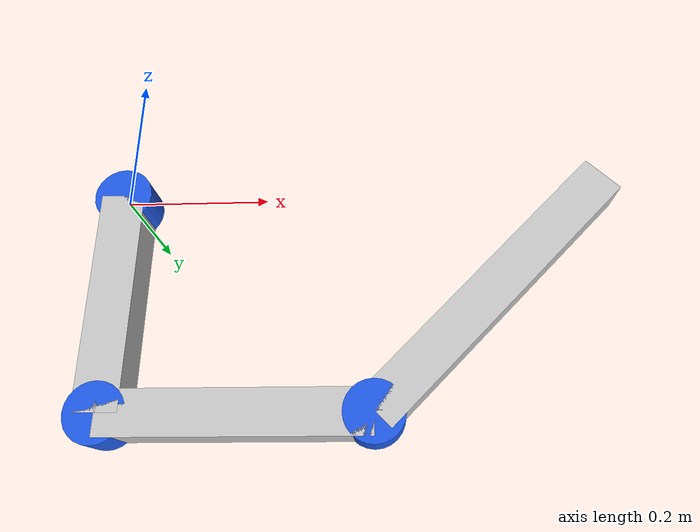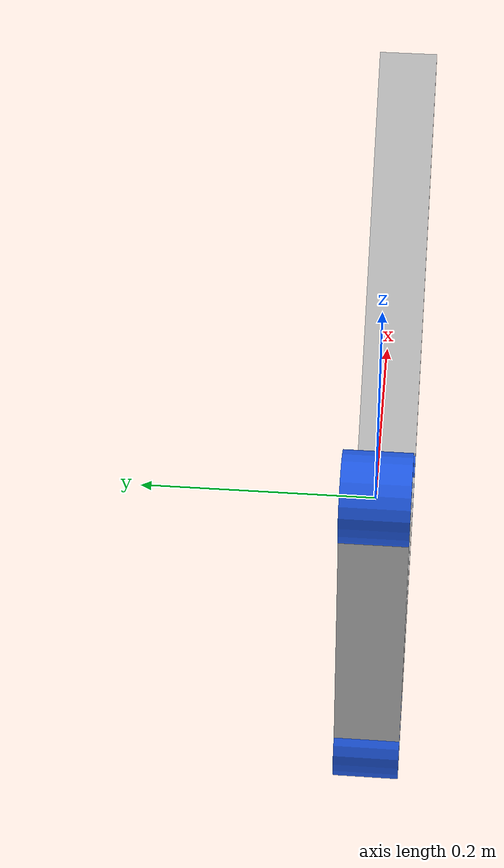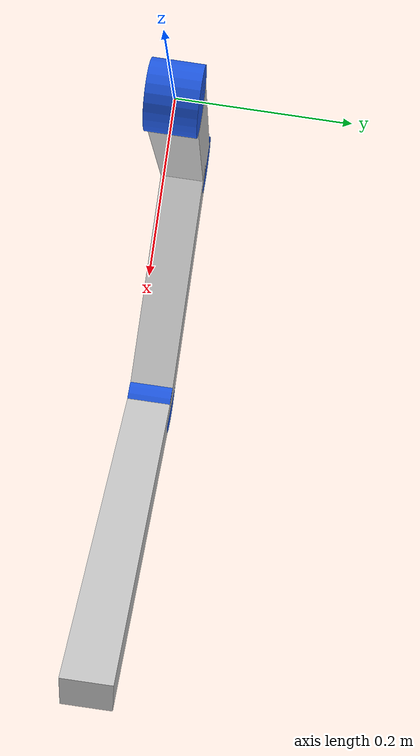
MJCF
<?xml version="1.0"?>
<mujoco model="triple_pendulum_mjcf">
  <compiler angle="radian" balanceinertia="true" discardvisual="false"/>
  <option gravity="0 0 -9.81"/>

  <worldbody>
    <light directional="false" pos="0 0 2" diffuse="0.8 0.8 0.8"/>
    <body name="link_1" pos="0 0 0">
      <joint name="joint_1" type="hinge" axis="0 1 0" limited="false"/>
      <inertial pos="0 0 -0.15" mass="1.20" diaginertia="0.00936 0.00936 0.00072"/>
      <geom name="joint1_vis" type="cylinder" size="0.04 0.03"
            pos="0 0 0" euler="1.5708 0 0" rgba="0.12 0.35 0.90 1"/>
      <geom name="link1_box" type="box" size="0.03 0.03 0.15"
            pos="0 0 -0.15" rgba="0.78 0.78 0.78 1"/>
      <body name="link_2" pos="0 0 -0.30">
        <joint name="joint_2" type="hinge" axis="0 1 0" limited="false"/>
        <inertial pos="0.175 0 0" mass="1.00" diaginertia="0.00060 0.010508 0.010508"/>
        <geom name="joint2_vis" type="cylinder" size="0.04 0.03"
              pos="0 0 0" euler="1.5708 0 0" rgba="0.12 0.35 0.90 1"/>
        <geom name="link2_box" type="box" size="0.03 0.03 0.175"
              pos="0.175 0 0" euler="0 1.5708 0" rgba="0.78 0.78 0.78 1"/>
        <body name="link_3" pos="0.35 0 0" euler="0 -0.785398 0">
          <joint name="joint_3" type="hinge" axis="0 1 0" limited="false"/>
          <inertial pos="0.225 0 0" mass="0.95" diaginertia="0.00057 0.016316 0.016316"/>
          <geom name="joint3_vis" type="cylinder" size="0.04 0.03"
                pos="0 0 0" euler="1.5708 0 0" rgba="0.12 0.35 0.90 1"/>
          <geom name="link3_box" type="box" size="0.03 0.03 0.225"
                pos="0.225 0 0" euler="0 1.5708 0" rgba="0.78 0.78 0.78 1"/>
        </body>
      </body>
    </body>
  </worldbody>
</mujoco>
